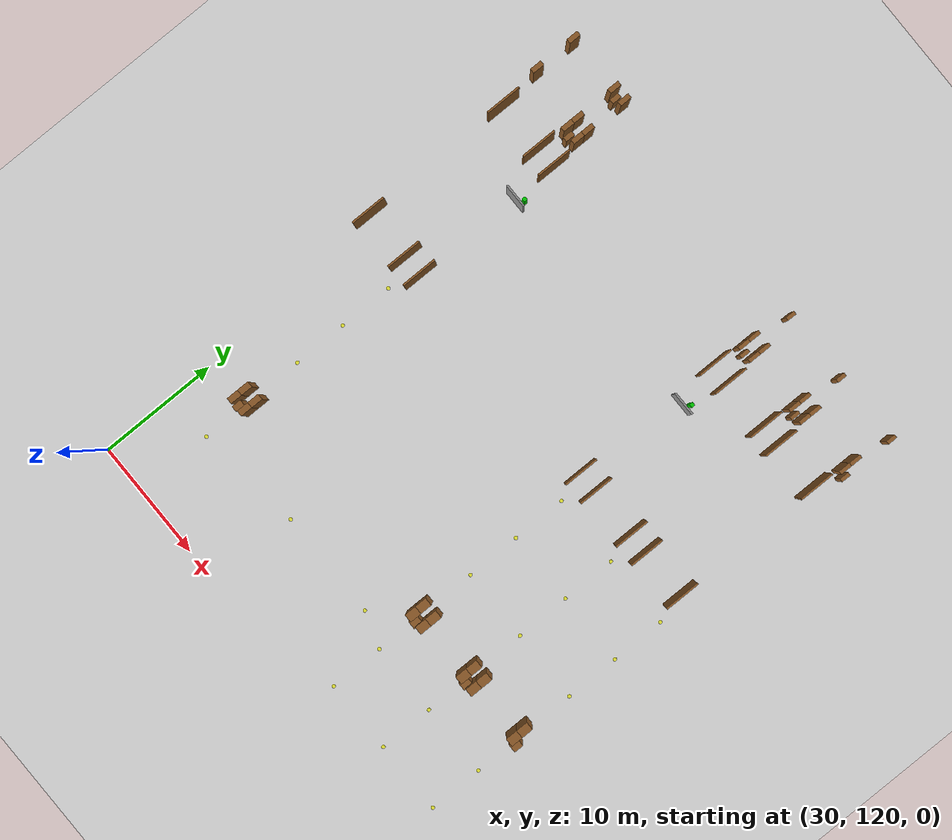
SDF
<sdf version="1.9">
 <world name="realistic_warehouse_150x200m">
  <model name="ground_plane">
   <static>true</static>
   <pose>68.5 102.0 0 0 0 0</pose>
   <link name="ground_link">
    <visual name="ground_visual">
     <geometry><box><size>127.0 194.0 0.01</size></box></geometry>
     <material><ambient>0.85 0.85 0.85 1.0</ambient><diffuse>0.85 0.85 0.85 1.0</diffuse></material>
    </visual>
    <collision name="ground_visual_collision">
     <geometry><box><size>127.0 194.0 0.01</size></box></geometry>
    </collision>
    <collision name="ground_collision">
     <geometry><plane><normal>0 0 1</normal><size>127.0 194.0</size></plane></geometry>
    </collision>
   </link>
  </model>
  <model name="dock_wall_Zone_A_C2_003">
   <static>true</static>
   <pose>35.0 156.2 1.25 0 0 0</pose>
   <link name="dock_wall_Zone_A_C2_003_link">
    <visual name="dock_wall_Zone_A_C2_003_vis">
     <geometry><box><size>2.0 0.15 2.5</size></box></geometry>
     <material><ambient>0.6 0.6 0.6 1.0</ambient><diffuse>0.6 0.6 0.6 1.0</diffuse></material>
    </visual>
    <collision name="dock_wall_Zone_A_C2_003_vis_collision">
     <geometry><box><size>2.0 0.15 2.5</size></box></geometry>
    </collision>
   </link>
  </model>
  <model name="charger_Zone_A_C2_004">
   <static>true</static>
   <pose>35.5 156.7 0.75 0 0 0</pose>
   <link name="charger_Zone_A_C2_004_link">
    <visual name="charger_Zone_A_C2_004_vis">
     <geometry><box><size>0.3 0.3 1.5</size></box></geometry>
     <material><ambient>0.0 0.8 0.0 1.0</ambient><diffuse>0.0 0.8 0.0 1.0</diffuse></material>
    </visual>
    <collision name="charger_Zone_A_C2_004_vis_collision">
     <geometry><box><size>0.3 0.3 1.5</size></box></geometry>
    </collision>
   </link>
  </model>
  <model name="aisle_R_Zone_A_A3_entry_139">
   <static>true</static>
   <pose>28.9 160.0 1.25 0 0 0</pose>
   <link name="aisle_R_Zone_A_A3_entry_139_link">
    <visual name="aisle_R_Zone_A_A3_entry_139_vis">
     <geometry><box><size>0.15 3.0 2.5</size></box></geometry>
     <material><ambient>0.55 0.35 0.15 1.0</ambient><diffuse>0.55 0.35 0.15 1.0</diffuse></material>
    </visual>
    <collision name="aisle_R_Zone_A_A3_entry_139_vis_collision">
     <geometry><box><size>0.15 3.0 2.5</size></box></geometry>
    </collision>
   </link>
  </model>
  <model name="rack_Zone_A_A3_S0_143">
   <static>true</static>
   <pose>28.6 163.5 1.25 0 0 0</pose>
   <link name="rack_Zone_A_A3_S0_143_link">
    <visual name="rack_Zone_A_A3_S0_143_vis">
     <geometry><box><size>0.4 1.0 2.5</size></box></geometry>
     <material><ambient>0.55 0.35 0.15 1.0</ambient><diffuse>0.55 0.35 0.15 1.0</diffuse></material>
    </visual>
    <collision name="rack_Zone_A_A3_S0_143_vis_collision">
     <geometry><box><size>0.4 1.0 2.5</size></box></geometry>
    </collision>
   </link>
  </model>
  <model name="rack_Zone_A_A3_S1_147">
   <static>true</static>
   <pose>28.6 167.0 1.25 0 0 0</pose>
   <link name="rack_Zone_A_A3_S1_147_link">
    <visual name="rack_Zone_A_A3_S1_147_vis">
     <geometry><box><size>0.4 1.0 2.5</size></box></geometry>
     <material><ambient>0.55 0.35 0.15 1.0</ambient><diffuse>0.55 0.35 0.15 1.0</diffuse></material>
    </visual>
    <collision name="rack_Zone_A_A3_S1_147_vis_collision">
     <geometry><box><size>0.4 1.0 2.5</size></box></geometry>
    </collision>
   </link>
  </model>
  <model name="aisle_L_Zone_A_A4_entry_182">
   <static>true</static>
   <pose>33.1 160.0 1.25 0 0 0</pose>
   <link name="aisle_L_Zone_A_A4_entry_182_link">
    <visual name="aisle_L_Zone_A_A4_entry_182_vis">
     <geometry><box><size>0.15 3.0 2.5</size></box></geometry>
     <material><ambient>0.55 0.35 0.15 1.0</ambient><diffuse>0.55 0.35 0.15 1.0</diffuse></material>
    </visual>
    <collision name="aisle_L_Zone_A_A4_entry_182_vis_collision">
     <geometry><box><size>0.15 3.0 2.5</size></box></geometry>
    </collision>
   </link>
  </model>
  <model name="aisle_R_Zone_A_A4_entry_183">
   <static>true</static>
   <pose>34.9 160.0 1.25 0 0 0</pose>
   <link name="aisle_R_Zone_A_A4_entry_183_link">
    <visual name="aisle_R_Zone_A_A4_entry_183_vis">
     <geometry><box><size>0.15 3.0 2.5</size></box></geometry>
     <material><ambient>0.55 0.35 0.15 1.0</ambient><diffuse>0.55 0.35 0.15 1.0</diffuse></material>
    </visual>
    <collision name="aisle_R_Zone_A_A4_entry_183_vis_collision">
     <geometry><box><size>0.15 3.0 2.5</size></box></geometry>
    </collision>
   </link>
  </model>
  <model name="rack_Zone_A_A4_S0_184">
   <static>true</static>
   <pose>33.4 162.5 1.25 0 0 0</pose>
   <link name="rack_Zone_A_A4_S0_184_link">
    <visual name="rack_Zone_A_A4_S0_184_vis">
     <geometry><box><size>0.4 1.0 2.5</size></box></geometry>
     <material><ambient>0.55 0.35 0.15 1.0</ambient><diffuse>0.55 0.35 0.15 1.0</diffuse></material>
    </visual>
    <collision name="rack_Zone_A_A4_S0_184_vis_collision">
     <geometry><box><size>0.4 1.0 2.5</size></box></geometry>
    </collision>
   </link>
  </model>
  <model name="rack_Zone_A_A4_S0_185">
   <static>true</static>
   <pose>33.4 163.5 1.25 0 0 0</pose>
   <link name="rack_Zone_A_A4_S0_185_link">
    <visual name="rack_Zone_A_A4_S0_185_vis">
     <geometry><box><size>0.4 1.0 2.5</size></box></geometry>
     <material><ambient>0.55 0.35 0.15 1.0</ambient><diffuse>0.55 0.35 0.15 1.0</diffuse></material>
    </visual>
    <collision name="rack_Zone_A_A4_S0_185_vis_collision">
     <geometry><box><size>0.4 1.0 2.5</size></box></geometry>
    </collision>
   </link>
  </model>
  <model name="rack_Zone_A_A4_S0_186">
   <static>true</static>
   <pose>34.6 162.5 1.25 0 0 0</pose>
   <link name="rack_Zone_A_A4_S0_186_link">
    <visual name="rack_Zone_A_A4_S0_186_vis">
     <geometry><box><size>0.4 1.0 2.5</size></box></geometry>
     <material><ambient>0.55 0.35 0.15 1.0</ambient><diffuse>0.55 0.35 0.15 1.0</diffuse></material>
    </visual>
    <collision name="rack_Zone_A_A4_S0_186_vis_collision">
     <geometry><box><size>0.4 1.0 2.5</size></box></geometry>
    </collision>
   </link>
  </model>
  <model name="rack_Zone_A_A4_S0_187">
   <static>true</static>
   <pose>34.6 163.5 1.25 0 0 0</pose>
   <link name="rack_Zone_A_A4_S0_187_link">
    <visual name="rack_Zone_A_A4_S0_187_vis">
     <geometry><box><size>0.4 1.0 2.5</size></box></geometry>
     <material><ambient>0.55 0.35 0.15 1.0</ambient><diffuse>0.55 0.35 0.15 1.0</diffuse></material>
    </visual>
    <collision name="rack_Zone_A_A4_S0_187_vis_collision">
     <geometry><box><size>0.4 1.0 2.5</size></box></geometry>
    </collision>
   </link>
  </model>
  <model name="rack_Zone_A_A4_S0_188">
   <static>true</static>
   <pose>34.0 162.2 0.9375 0 0 0</pose>
   <link name="rack_Zone_A_A4_S0_188_link">
    <visual name="rack_Zone_A_A4_S0_188_vis">
     <geometry><box><size>0.4 0.8 1.875</size></box></geometry>
     <material><ambient>0.55 0.35 0.15 1.0</ambient><diffuse>0.55 0.35 0.15 1.0</diffuse></material>
    </visual>
    <collision name="rack_Zone_A_A4_S0_188_vis_collision">
     <geometry><box><size>0.4 0.8 1.875</size></box></geometry>
    </collision>
   </link>
  </model>
  <model name="rack_Zone_A_A4_S1_189">
   <static>true</static>
   <pose>33.4 167.0 1.25 0 0 0</pose>
   <link name="rack_Zone_A_A4_S1_189_link">
    <visual name="rack_Zone_A_A4_S1_189_vis">
     <geometry><box><size>0.4 1.0 2.5</size></box></geometry>
     <material><ambient>0.55 0.35 0.15 1.0</ambient><diffuse>0.55 0.35 0.15 1.0</diffuse></material>
    </visual>
    <collision name="rack_Zone_A_A4_S1_189_vis_collision">
     <geometry><box><size>0.4 1.0 2.5</size></box></geometry>
    </collision>
   </link>
  </model>
  <model name="rack_Zone_A_A4_S1_191">
   <static>true</static>
   <pose>34.6 167.0 1.25 0 0 0</pose>
   <link name="rack_Zone_A_A4_S1_191_link">
    <visual name="rack_Zone_A_A4_S1_191_vis">
     <geometry><box><size>0.4 1.0 2.5</size></box></geometry>
     <material><ambient>0.55 0.35 0.15 1.0</ambient><diffuse>0.55 0.35 0.15 1.0</diffuse></material>
    </visual>
    <collision name="rack_Zone_A_A4_S1_191_vis_collision">
     <geometry><box><size>0.4 1.0 2.5</size></box></geometry>
    </collision>
   </link>
  </model>
  <model name="rack_Zone_A_A4_S1_193">
   <static>true</static>
   <pose>34.0 166.7 0.9375 0 0 0</pose>
   <link name="rack_Zone_A_A4_S1_193_link">
    <visual name="rack_Zone_A_A4_S1_193_vis">
     <geometry><box><size>0.4 0.8 1.875</size></box></geometry>
     <material><ambient>0.55 0.35 0.15 1.0</ambient><diffuse>0.55 0.35 0.15 1.0</diffuse></material>
    </visual>
    <collision name="rack_Zone_A_A4_S1_193_vis_collision">
     <geometry><box><size>0.4 0.8 1.875</size></box></geometry>
    </collision>
   </link>
  </model>
  <model name="dock_wall_Zone_B_C1_226">
   <static>true</static>
   <pose>55.0 156.2 1.0 0 0 0</pose>
   <link name="dock_wall_Zone_B_C1_226_link">
    <visual name="dock_wall_Zone_B_C1_226_vis">
     <geometry><box><size>2.0 0.15 2.0</size></box></geometry>
     <material><ambient>0.6 0.6 0.6 1.0</ambient><diffuse>0.6 0.6 0.6 1.0</diffuse></material>
    </visual>
    <collision name="dock_wall_Zone_B_C1_226_vis_collision">
     <geometry><box><size>2.0 0.15 2.0</size></box></geometry>
    </collision>
   </link>
  </model>
  <model name="charger_Zone_B_C1_227">
   <static>true</static>
   <pose>55.5 156.7 0.75 0 0 0</pose>
   <link name="charger_Zone_B_C1_227_link">
    <visual name="charger_Zone_B_C1_227_vis">
     <geometry><box><size>0.3 0.3 1.5</size></box></geometry>
     <material><ambient>0.0 0.8 0.0 1.0</ambient><diffuse>0.0 0.8 0.0 1.0</diffuse></material>
    </visual>
    <collision name="charger_Zone_B_C1_227_vis_collision">
     <geometry><box><size>0.3 0.3 1.5</size></box></geometry>
    </collision>
   </link>
  </model>
  <model name="aisle_L_Zone_B_A0_entry_231">
   <static>true</static>
   <pose>54.1 160.0 1.0 0 0 0</pose>
   <link name="aisle_L_Zone_B_A0_entry_231_link">
    <visual name="aisle_L_Zone_B_A0_entry_231_vis">
     <geometry><box><size>0.15 3.0 2.0</size></box></geometry>
     <material><ambient>0.55 0.35 0.15 1.0</ambient><diffuse>0.55 0.35 0.15 1.0</diffuse></material>
    </visual>
    <collision name="aisle_L_Zone_B_A0_entry_231_vis_collision">
     <geometry><box><size>0.15 3.0 2.0</size></box></geometry>
    </collision>
   </link>
  </model>
  <model name="aisle_R_Zone_B_A0_entry_232">
   <static>true</static>
   <pose>55.9 160.0 1.0 0 0 0</pose>
   <link name="aisle_R_Zone_B_A0_entry_232_link">
    <visual name="aisle_R_Zone_B_A0_entry_232_vis">
     <geometry><box><size>0.15 3.0 2.0</size></box></geometry>
     <material><ambient>0.55 0.35 0.15 1.0</ambient><diffuse>0.55 0.35 0.15 1.0</diffuse></material>
    </visual>
    <collision name="aisle_R_Zone_B_A0_entry_232_vis_collision">
     <geometry><box><size>0.15 3.0 2.0</size></box></geometry>
    </collision>
   </link>
  </model>
  <model name="rack_Zone_B_A0_S0_233">
   <static>true</static>
   <pose>54.4 162.5 1.0 0 0 0</pose>
   <link name="rack_Zone_B_A0_S0_233_link">
    <visual name="rack_Zone_B_A0_S0_233_vis">
     <geometry><box><size>0.3 1.0 2.0</size></box></geometry>
     <material><ambient>0.55 0.35 0.15 1.0</ambient><diffuse>0.55 0.35 0.15 1.0</diffuse></material>
    </visual>
    <collision name="rack_Zone_B_A0_S0_233_vis_collision">
     <geometry><box><size>0.3 1.0 2.0</size></box></geometry>
    </collision>
   </link>
  </model>
  <model name="rack_Zone_B_A0_S0_234">
   <static>true</static>
   <pose>54.4 163.5 1.0 0 0 0</pose>
   <link name="rack_Zone_B_A0_S0_234_link">
    <visual name="rack_Zone_B_A0_S0_234_vis">
     <geometry><box><size>0.3 1.0 2.0</size></box></geometry>
     <material><ambient>0.55 0.35 0.15 1.0</ambient><diffuse>0.55 0.35 0.15 1.0</diffuse></material>
    </visual>
    <collision name="rack_Zone_B_A0_S0_234_vis_collision">
     <geometry><box><size>0.3 1.0 2.0</size></box></geometry>
    </collision>
   </link>
  </model>
  <model name="rack_Zone_B_A0_S0_235">
   <static>true</static>
   <pose>55.6 162.5 1.0 0 0 0</pose>
   <link name="rack_Zone_B_A0_S0_235_link">
    <visual name="rack_Zone_B_A0_S0_235_vis">
     <geometry><box><size>0.3 1.0 2.0</size></box></geometry>
     <material><ambient>0.55 0.35 0.15 1.0</ambient><diffuse>0.55 0.35 0.15 1.0</diffuse></material>
    </visual>
    <collision name="rack_Zone_B_A0_S0_235_vis_collision">
     <geometry><box><size>0.3 1.0 2.0</size></box></geometry>
    </collision>
   </link>
  </model>
  <model name="rack_Zone_B_A0_S0_236">
   <static>true</static>
   <pose>55.6 163.5 1.0 0 0 0</pose>
   <link name="rack_Zone_B_A0_S0_236_link">
    <visual name="rack_Zone_B_A0_S0_236_vis">
     <geometry><box><size>0.3 1.0 2.0</size></box></geometry>
     <material><ambient>0.55 0.35 0.15 1.0</ambient><diffuse>0.55 0.35 0.15 1.0</diffuse></material>
    </visual>
    <collision name="rack_Zone_B_A0_S0_236_vis_collision">
     <geometry><box><size>0.3 1.0 2.0</size></box></geometry>
    </collision>
   </link>
  </model>
  <model name="rack_Zone_B_A0_S0_237">
   <static>true</static>
   <pose>55.0 162.2 0.75 0 0 0</pose>
   <link name="rack_Zone_B_A0_S0_237_link">
    <visual name="rack_Zone_B_A0_S0_237_vis">
     <geometry><box><size>0.3 0.8 1.5</size></box></geometry>
     <material><ambient>0.55 0.35 0.15 1.0</ambient><diffuse>0.55 0.35 0.15 1.0</diffuse></material>
    </visual>
    <collision name="rack_Zone_B_A0_S0_237_vis_collision">
     <geometry><box><size>0.3 0.8 1.5</size></box></geometry>
    </collision>
   </link>
  </model>
  <model name="rack_Zone_B_A0_S1_242">
   <static>true</static>
   <pose>55.0 166.7 0.75 0 0 0</pose>
   <link name="rack_Zone_B_A0_S1_242_link">
    <visual name="rack_Zone_B_A0_S1_242_vis">
     <geometry><box><size>0.3 0.8 1.5</size></box></geometry>
     <material><ambient>0.55 0.35 0.15 1.0</ambient><diffuse>0.55 0.35 0.15 1.0</diffuse></material>
    </visual>
    <collision name="rack_Zone_B_A0_S1_242_vis_collision">
     <geometry><box><size>0.3 0.8 1.5</size></box></geometry>
    </collision>
   </link>
  </model>
  <model name="aisle_L_Zone_B_A1_entry_275">
   <static>true</static>
   <pose>60.1 160.0 1.0 0 0 0</pose>
   <link name="aisle_L_Zone_B_A1_entry_275_link">
    <visual name="aisle_L_Zone_B_A1_entry_275_vis">
     <geometry><box><size>0.15 3.0 2.0</size></box></geometry>
     <material><ambient>0.55 0.35 0.15 1.0</ambient><diffuse>0.55 0.35 0.15 1.0</diffuse></material>
    </visual>
    <collision name="aisle_L_Zone_B_A1_entry_275_vis_collision">
     <geometry><box><size>0.15 3.0 2.0</size></box></geometry>
    </collision>
   </link>
  </model>
  <model name="aisle_R_Zone_B_A1_entry_276">
   <static>true</static>
   <pose>61.9 160.0 1.0 0 0 0</pose>
   <link name="aisle_R_Zone_B_A1_entry_276_link">
    <visual name="aisle_R_Zone_B_A1_entry_276_vis">
     <geometry><box><size>0.15 3.0 2.0</size></box></geometry>
     <material><ambient>0.55 0.35 0.15 1.0</ambient><diffuse>0.55 0.35 0.15 1.0</diffuse></material>
    </visual>
    <collision name="aisle_R_Zone_B_A1_entry_276_vis_collision">
     <geometry><box><size>0.15 3.0 2.0</size></box></geometry>
    </collision>
   </link>
  </model>
  <model name="rack_Zone_B_A1_S0_277">
   <static>true</static>
   <pose>60.4 162.5 1.0 0 0 0</pose>
   <link name="rack_Zone_B_A1_S0_277_link">
    <visual name="rack_Zone_B_A1_S0_277_vis">
     <geometry><box><size>0.3 1.0 2.0</size></box></geometry>
     <material><ambient>0.55 0.35 0.15 1.0</ambient><diffuse>0.55 0.35 0.15 1.0</diffuse></material>
    </visual>
    <collision name="rack_Zone_B_A1_S0_277_vis_collision">
     <geometry><box><size>0.3 1.0 2.0</size></box></geometry>
    </collision>
   </link>
  </model>
  <model name="rack_Zone_B_A1_S0_278">
   <static>true</static>
   <pose>60.4 163.5 1.0 0 0 0</pose>
   <link name="rack_Zone_B_A1_S0_278_link">
    <visual name="rack_Zone_B_A1_S0_278_vis">
     <geometry><box><size>0.3 1.0 2.0</size></box></geometry>
     <material><ambient>0.55 0.35 0.15 1.0</ambient><diffuse>0.55 0.35 0.15 1.0</diffuse></material>
    </visual>
    <collision name="rack_Zone_B_A1_S0_278_vis_collision">
     <geometry><box><size>0.3 1.0 2.0</size></box></geometry>
    </collision>
   </link>
  </model>
  <model name="rack_Zone_B_A1_S0_279">
   <static>true</static>
   <pose>61.6 162.5 1.0 0 0 0</pose>
   <link name="rack_Zone_B_A1_S0_279_link">
    <visual name="rack_Zone_B_A1_S0_279_vis">
     <geometry><box><size>0.3 1.0 2.0</size></box></geometry>
     <material><ambient>0.55 0.35 0.15 1.0</ambient><diffuse>0.55 0.35 0.15 1.0</diffuse></material>
    </visual>
    <collision name="rack_Zone_B_A1_S0_279_vis_collision">
     <geometry><box><size>0.3 1.0 2.0</size></box></geometry>
    </collision>
   </link>
  </model>
  <model name="rack_Zone_B_A1_S0_280">
   <static>true</static>
   <pose>61.6 163.5 1.0 0 0 0</pose>
   <link name="rack_Zone_B_A1_S0_280_link">
    <visual name="rack_Zone_B_A1_S0_280_vis">
     <geometry><box><size>0.3 1.0 2.0</size></box></geometry>
     <material><ambient>0.55 0.35 0.15 1.0</ambient><diffuse>0.55 0.35 0.15 1.0</diffuse></material>
    </visual>
    <collision name="rack_Zone_B_A1_S0_280_vis_collision">
     <geometry><box><size>0.3 1.0 2.0</size></box></geometry>
    </collision>
   </link>
  </model>
  <model name="rack_Zone_B_A1_S0_281">
   <static>true</static>
   <pose>61.0 162.2 0.75 0 0 0</pose>
   <link name="rack_Zone_B_A1_S0_281_link">
    <visual name="rack_Zone_B_A1_S0_281_vis">
     <geometry><box><size>0.3 0.8 1.5</size></box></geometry>
     <material><ambient>0.55 0.35 0.15 1.0</ambient><diffuse>0.55 0.35 0.15 1.0</diffuse></material>
    </visual>
    <collision name="rack_Zone_B_A1_S0_281_vis_collision">
     <geometry><box><size>0.3 0.8 1.5</size></box></geometry>
    </collision>
   </link>
  </model>
  <model name="rack_Zone_B_A1_S1_286">
   <static>true</static>
   <pose>61.0 166.7 0.75 0 0 0</pose>
   <link name="rack_Zone_B_A1_S1_286_link">
    <visual name="rack_Zone_B_A1_S1_286_vis">
     <geometry><box><size>0.3 0.8 1.5</size></box></geometry>
     <material><ambient>0.55 0.35 0.15 1.0</ambient><diffuse>0.55 0.35 0.15 1.0</diffuse></material>
    </visual>
    <collision name="rack_Zone_B_A1_S1_286_vis_collision">
     <geometry><box><size>0.3 0.8 1.5</size></box></geometry>
    </collision>
   </link>
  </model>
  <model name="aisle_L_Zone_B_A2_entry_319">
   <static>true</static>
   <pose>66.1 160.0 1.0 0 0 0</pose>
   <link name="aisle_L_Zone_B_A2_entry_319_link">
    <visual name="aisle_L_Zone_B_A2_entry_319_vis">
     <geometry><box><size>0.15 3.0 2.0</size></box></geometry>
     <material><ambient>0.55 0.35 0.15 1.0</ambient><diffuse>0.55 0.35 0.15 1.0</diffuse></material>
    </visual>
    <collision name="aisle_L_Zone_B_A2_entry_319_vis_collision">
     <geometry><box><size>0.15 3.0 2.0</size></box></geometry>
    </collision>
   </link>
  </model>
  <model name="rack_Zone_B_A2_S0_321">
   <static>true</static>
   <pose>66.4 162.5 1.0 0 0 0</pose>
   <link name="rack_Zone_B_A2_S0_321_link">
    <visual name="rack_Zone_B_A2_S0_321_vis">
     <geometry><box><size>0.3 1.0 2.0</size></box></geometry>
     <material><ambient>0.55 0.35 0.15 1.0</ambient><diffuse>0.55 0.35 0.15 1.0</diffuse></material>
    </visual>
    <collision name="rack_Zone_B_A2_S0_321_vis_collision">
     <geometry><box><size>0.3 1.0 2.0</size></box></geometry>
    </collision>
   </link>
  </model>
  <model name="rack_Zone_B_A2_S0_322">
   <static>true</static>
   <pose>66.4 163.5 1.0 0 0 0</pose>
   <link name="rack_Zone_B_A2_S0_322_link">
    <visual name="rack_Zone_B_A2_S0_322_vis">
     <geometry><box><size>0.3 1.0 2.0</size></box></geometry>
     <material><ambient>0.55 0.35 0.15 1.0</ambient><diffuse>0.55 0.35 0.15 1.0</diffuse></material>
    </visual>
    <collision name="rack_Zone_B_A2_S0_322_vis_collision">
     <geometry><box><size>0.3 1.0 2.0</size></box></geometry>
    </collision>
   </link>
  </model>
  <model name="rack_Zone_B_A2_S0_325">
   <static>true</static>
   <pose>67.0 162.2 0.75 0 0 0</pose>
   <link name="rack_Zone_B_A2_S0_325_link">
    <visual name="rack_Zone_B_A2_S0_325_vis">
     <geometry><box><size>0.3 0.8 1.5</size></box></geometry>
     <material><ambient>0.55 0.35 0.15 1.0</ambient><diffuse>0.55 0.35 0.15 1.0</diffuse></material>
    </visual>
    <collision name="rack_Zone_B_A2_S0_325_vis_collision">
     <geometry><box><size>0.3 0.8 1.5</size></box></geometry>
    </collision>
   </link>
  </model>
  <model name="rack_Zone_B_A2_S1_330">
   <static>true</static>
   <pose>67.0 166.7 0.75 0 0 0</pose>
   <link name="rack_Zone_B_A2_S1_330_link">
    <visual name="rack_Zone_B_A2_S1_330_vis">
     <geometry><box><size>0.3 0.8 1.5</size></box></geometry>
     <material><ambient>0.55 0.35 0.15 1.0</ambient><diffuse>0.55 0.35 0.15 1.0</diffuse></material>
    </visual>
    <collision name="rack_Zone_B_A2_S1_330_vis_collision">
     <geometry><box><size>0.3 0.8 1.5</size></box></geometry>
    </collision>
   </link>
  </model>
  <model name="aisle_R_Zone_D_A3_exit_760">
   <static>true</static>
   <pose>28.9 147.0 1.25 0 0 0</pose>
   <link name="aisle_R_Zone_D_A3_exit_760_link">
    <visual name="aisle_R_Zone_D_A3_exit_760_vis">
     <geometry><box><size>0.15 3.0 2.5</size></box></geometry>
     <material><ambient>0.55 0.35 0.15 1.0</ambient><diffuse>0.55 0.35 0.15 1.0</diffuse></material>
    </visual>
    <collision name="aisle_R_Zone_D_A3_exit_760_vis_collision">
     <geometry><box><size>0.15 3.0 2.5</size></box></geometry>
    </collision>
   </link>
  </model>
  <model name="cross_Zone_D_A4_S3_770">
   <static>true</static>
   <pose>34.0 126.5 0.01 0 0 0</pose>
   <link name="cross_Zone_D_A4_S3_770_link">
    <visual name="cross_Zone_D_A4_S3_770_vis">
     <geometry><cylinder><radius>0.15</radius><length>0.02</length></cylinder></geometry>
     <material><ambient>0.9 0.9 0.2 1.0</ambient><diffuse>0.9 0.9 0.2 1.0</diffuse></material>
    </visual>
    <collision name="cross_Zone_D_A4_S3_770_vis_collision">
     <geometry><cylinder><radius>0.15</radius><length>0.02</length></cylinder></geometry>
    </collision>
   </link>
  </model>
  <model name="rack_Zone_D_A4_S4_771">
   <static>true</static>
   <pose>33.4 130.5 1.25 0 0 0</pose>
   <link name="rack_Zone_D_A4_S4_771_link">
    <visual name="rack_Zone_D_A4_S4_771_vis">
     <geometry><box><size>0.5 1.0 2.5</size></box></geometry>
     <material><ambient>0.55 0.35 0.15 1.0</ambient><diffuse>0.55 0.35 0.15 1.0</diffuse></material>
    </visual>
    <collision name="rack_Zone_D_A4_S4_771_vis_collision">
     <geometry><box><size>0.5 1.0 2.5</size></box></geometry>
    </collision>
   </link>
  </model>
  <model name="rack_Zone_D_A4_S4_772">
   <static>true</static>
   <pose>33.4 131.5 1.25 0 0 0</pose>
   <link name="rack_Zone_D_A4_S4_772_link">
    <visual name="rack_Zone_D_A4_S4_772_vis">
     <geometry><box><size>0.5 1.0 2.5</size></box></geometry>
     <material><ambient>0.55 0.35 0.15 1.0</ambient><diffuse>0.55 0.35 0.15 1.0</diffuse></material>
    </visual>
    <collision name="rack_Zone_D_A4_S4_772_vis_collision">
     <geometry><box><size>0.5 1.0 2.5</size></box></geometry>
    </collision>
   </link>
  </model>
  <model name="rack_Zone_D_A4_S4_773">
   <static>true</static>
   <pose>34.6 130.5 1.25 0 0 0</pose>
   <link name="rack_Zone_D_A4_S4_773_link">
    <visual name="rack_Zone_D_A4_S4_773_vis">
     <geometry><box><size>0.5 1.0 2.5</size></box></geometry>
     <material><ambient>0.55 0.35 0.15 1.0</ambient><diffuse>0.55 0.35 0.15 1.0</diffuse></material>
    </visual>
    <collision name="rack_Zone_D_A4_S4_773_vis_collision">
     <geometry><box><size>0.5 1.0 2.5</size></box></geometry>
    </collision>
   </link>
  </model>
  <model name="rack_Zone_D_A4_S4_774">
   <static>true</static>
   <pose>34.6 131.5 1.25 0 0 0</pose>
   <link name="rack_Zone_D_A4_S4_774_link">
    <visual name="rack_Zone_D_A4_S4_774_vis">
     <geometry><box><size>0.5 1.0 2.5</size></box></geometry>
     <material><ambient>0.55 0.35 0.15 1.0</ambient><diffuse>0.55 0.35 0.15 1.0</diffuse></material>
    </visual>
    <collision name="rack_Zone_D_A4_S4_774_vis_collision">
     <geometry><box><size>0.5 1.0 2.5</size></box></geometry>
    </collision>
   </link>
  </model>
  <model name="rack_Zone_D_A4_S4_775">
   <static>true</static>
   <pose>34.0 130.2 0.9375 0 0 0</pose>
   <link name="rack_Zone_D_A4_S4_775_link">
    <visual name="rack_Zone_D_A4_S4_775_vis">
     <geometry><box><size>0.5 0.8 1.875</size></box></geometry>
     <material><ambient>0.55 0.35 0.15 1.0</ambient><diffuse>0.55 0.35 0.15 1.0</diffuse></material>
    </visual>
    <collision name="rack_Zone_D_A4_S4_775_vis_collision">
     <geometry><box><size>0.5 0.8 1.875</size></box></geometry>
    </collision>
   </link>
  </model>
  <model name="cross_Zone_D_A4_S5_776">
   <static>true</static>
   <pose>34.0 135.5 0.01 0 0 0</pose>
   <link name="cross_Zone_D_A4_S5_776_link">
    <visual name="cross_Zone_D_A4_S5_776_vis">
     <geometry><cylinder><radius>0.15</radius><length>0.02</length></cylinder></geometry>
     <material><ambient>0.9 0.9 0.2 1.0</ambient><diffuse>0.9 0.9 0.2 1.0</diffuse></material>
    </visual>
    <collision name="cross_Zone_D_A4_S5_776_vis_collision">
     <geometry><cylinder><radius>0.15</radius><length>0.02</length></cylinder></geometry>
    </collision>
   </link>
  </model>
  <model name="gap_Zone_D_A4_S6_777">
   <static>true</static>
   <pose>34.0 140.0 0.01 0 0 0</pose>
   <link name="gap_Zone_D_A4_S6_777_link">
    <visual name="gap_Zone_D_A4_S6_777_vis">
     <geometry><cylinder><radius>0.15</radius><length>0.02</length></cylinder></geometry>
     <material><ambient>0.9 0.9 0.2 1.0</ambient><diffuse>0.9 0.9 0.2 1.0</diffuse></material>
    </visual>
    <collision name="gap_Zone_D_A4_S6_777_vis_collision">
     <geometry><cylinder><radius>0.15</radius><length>0.02</length></cylinder></geometry>
    </collision>
   </link>
  </model>
  <model name="cross_Zone_D_A4_S7_778">
   <static>true</static>
   <pose>34.0 144.5 0.01 0 0 0</pose>
   <link name="cross_Zone_D_A4_S7_778_link">
    <visual name="cross_Zone_D_A4_S7_778_vis">
     <geometry><cylinder><radius>0.15</radius><length>0.02</length></cylinder></geometry>
     <material><ambient>0.9 0.9 0.2 1.0</ambient><diffuse>0.9 0.9 0.2 1.0</diffuse></material>
    </visual>
    <collision name="cross_Zone_D_A4_S7_778_vis_collision">
     <geometry><cylinder><radius>0.15</radius><length>0.02</length></cylinder></geometry>
    </collision>
   </link>
  </model>
  <model name="aisle_L_Zone_D_A4_exit_779">
   <static>true</static>
   <pose>33.1 147.0 1.25 0 0 0</pose>
   <link name="aisle_L_Zone_D_A4_exit_779_link">
    <visual name="aisle_L_Zone_D_A4_exit_779_vis">
     <geometry><box><size>0.15 3.0 2.5</size></box></geometry>
     <material><ambient>0.55 0.35 0.15 1.0</ambient><diffuse>0.55 0.35 0.15 1.0</diffuse></material>
    </visual>
    <collision name="aisle_L_Zone_D_A4_exit_779_vis_collision">
     <geometry><box><size>0.15 3.0 2.5</size></box></geometry>
    </collision>
   </link>
  </model>
  <model name="aisle_R_Zone_D_A4_exit_780">
   <static>true</static>
   <pose>34.9 147.0 1.25 0 0 0</pose>
   <link name="aisle_R_Zone_D_A4_exit_780_link">
    <visual name="aisle_R_Zone_D_A4_exit_780_vis">
     <geometry><box><size>0.15 3.0 2.5</size></box></geometry>
     <material><ambient>0.55 0.35 0.15 1.0</ambient><diffuse>0.55 0.35 0.15 1.0</diffuse></material>
    </visual>
    <collision name="aisle_R_Zone_D_A4_exit_780_vis_collision">
     <geometry><box><size>0.15 3.0 2.5</size></box></geometry>
    </collision>
   </link>
  </model>
  <model name="gap_Zone_E_A0_S2_794">
   <static>true</static>
   <pose>55.0 122.0 0.01 0 0 0</pose>
   <link name="gap_Zone_E_A0_S2_794_link">
    <visual name="gap_Zone_E_A0_S2_794_vis">
     <geometry><cylinder><radius>0.15</radius><length>0.02</length></cylinder></geometry>
     <material><ambient>0.9 0.9 0.2 1.0</ambient><diffuse>0.9 0.9 0.2 1.0</diffuse></material>
    </visual>
    <collision name="gap_Zone_E_A0_S2_794_vis_collision">
     <geometry><cylinder><radius>0.15</radius><length>0.02</length></cylinder></geometry>
    </collision>
   </link>
  </model>
  <model name="cross_Zone_E_A0_S3_795">
   <static>true</static>
   <pose>55.0 126.5 0.01 0 0 0</pose>
   <link name="cross_Zone_E_A0_S3_795_link">
    <visual name="cross_Zone_E_A0_S3_795_vis">
     <geometry><cylinder><radius>0.15</radius><length>0.02</length></cylinder></geometry>
     <material><ambient>0.9 0.9 0.2 1.0</ambient><diffuse>0.9 0.9 0.2 1.0</diffuse></material>
    </visual>
    <collision name="cross_Zone_E_A0_S3_795_vis_collision">
     <geometry><cylinder><radius>0.15</radius><length>0.02</length></cylinder></geometry>
    </collision>
   </link>
  </model>
  <model name="rack_Zone_E_A0_S4_796">
   <static>true</static>
   <pose>54.4 130.5 1.0 0 0 0</pose>
   <link name="rack_Zone_E_A0_S4_796_link">
    <visual name="rack_Zone_E_A0_S4_796_vis">
     <geometry><box><size>0.7 1.0 2.0</size></box></geometry>
     <material><ambient>0.55 0.35 0.15 1.0</ambient><diffuse>0.55 0.35 0.15 1.0</diffuse></material>
    </visual>
    <collision name="rack_Zone_E_A0_S4_796_vis_collision">
     <geometry><box><size>0.7 1.0 2.0</size></box></geometry>
    </collision>
   </link>
  </model>
  <model name="rack_Zone_E_A0_S4_797">
   <static>true</static>
   <pose>54.4 131.5 1.0 0 0 0</pose>
   <link name="rack_Zone_E_A0_S4_797_link">
    <visual name="rack_Zone_E_A0_S4_797_vis">
     <geometry><box><size>0.7 1.0 2.0</size></box></geometry>
     <material><ambient>0.55 0.35 0.15 1.0</ambient><diffuse>0.55 0.35 0.15 1.0</diffuse></material>
    </visual>
    <collision name="rack_Zone_E_A0_S4_797_vis_collision">
     <geometry><box><size>0.7 1.0 2.0</size></box></geometry>
    </collision>
   </link>
  </model>
  <model name="rack_Zone_E_A0_S4_798">
   <static>true</static>
   <pose>55.6 130.5 1.0 0 0 0</pose>
   <link name="rack_Zone_E_A0_S4_798_link">
    <visual name="rack_Zone_E_A0_S4_798_vis">
     <geometry><box><size>0.7 1.0 2.0</size></box></geometry>
     <material><ambient>0.55 0.35 0.15 1.0</ambient><diffuse>0.55 0.35 0.15 1.0</diffuse></material>
    </visual>
    <collision name="rack_Zone_E_A0_S4_798_vis_collision">
     <geometry><box><size>0.7 1.0 2.0</size></box></geometry>
    </collision>
   </link>
  </model>
  <model name="rack_Zone_E_A0_S4_799">
   <static>true</static>
   <pose>55.6 131.5 1.0 0 0 0</pose>
   <link name="rack_Zone_E_A0_S4_799_link">
    <visual name="rack_Zone_E_A0_S4_799_vis">
     <geometry><box><size>0.7 1.0 2.0</size></box></geometry>
     <material><ambient>0.55 0.35 0.15 1.0</ambient><diffuse>0.55 0.35 0.15 1.0</diffuse></material>
    </visual>
    <collision name="rack_Zone_E_A0_S4_799_vis_collision">
     <geometry><box><size>0.7 1.0 2.0</size></box></geometry>
    </collision>
   </link>
  </model>
  <model name="rack_Zone_E_A0_S4_800">
   <static>true</static>
   <pose>55.0 130.2 0.75 0 0 0</pose>
   <link name="rack_Zone_E_A0_S4_800_link">
    <visual name="rack_Zone_E_A0_S4_800_vis">
     <geometry><box><size>0.7 0.8 1.5</size></box></geometry>
     <material><ambient>0.55 0.35 0.15 1.0</ambient><diffuse>0.55 0.35 0.15 1.0</diffuse></material>
    </visual>
    <collision name="rack_Zone_E_A0_S4_800_vis_collision">
     <geometry><box><size>0.7 0.8 1.5</size></box></geometry>
    </collision>
   </link>
  </model>
  <model name="cross_Zone_E_A0_S5_801">
   <static>true</static>
   <pose>55.0 135.5 0.01 0 0 0</pose>
   <link name="cross_Zone_E_A0_S5_801_link">
    <visual name="cross_Zone_E_A0_S5_801_vis">
     <geometry><cylinder><radius>0.15</radius><length>0.02</length></cylinder></geometry>
     <material><ambient>0.9 0.9 0.2 1.0</ambient><diffuse>0.9 0.9 0.2 1.0</diffuse></material>
    </visual>
    <collision name="cross_Zone_E_A0_S5_801_vis_collision">
     <geometry><cylinder><radius>0.15</radius><length>0.02</length></cylinder></geometry>
    </collision>
   </link>
  </model>
  <model name="gap_Zone_E_A0_S6_802">
   <static>true</static>
   <pose>55.0 140.0 0.01 0 0 0</pose>
   <link name="gap_Zone_E_A0_S6_802_link">
    <visual name="gap_Zone_E_A0_S6_802_vis">
     <geometry><cylinder><radius>0.15</radius><length>0.02</length></cylinder></geometry>
     <material><ambient>0.9 0.9 0.2 1.0</ambient><diffuse>0.9 0.9 0.2 1.0</diffuse></material>
    </visual>
    <collision name="gap_Zone_E_A0_S6_802_vis_collision">
     <geometry><cylinder><radius>0.15</radius><length>0.02</length></cylinder></geometry>
    </collision>
   </link>
  </model>
  <model name="cross_Zone_E_A0_S7_803">
   <static>true</static>
   <pose>55.0 144.5 0.01 0 0 0</pose>
   <link name="cross_Zone_E_A0_S7_803_link">
    <visual name="cross_Zone_E_A0_S7_803_vis">
     <geometry><cylinder><radius>0.15</radius><length>0.02</length></cylinder></geometry>
     <material><ambient>0.9 0.9 0.2 1.0</ambient><diffuse>0.9 0.9 0.2 1.0</diffuse></material>
    </visual>
    <collision name="cross_Zone_E_A0_S7_803_vis_collision">
     <geometry><cylinder><radius>0.15</radius><length>0.02</length></cylinder></geometry>
    </collision>
   </link>
  </model>
  <model name="aisle_L_Zone_E_A0_exit_804">
   <static>true</static>
   <pose>54.1 147.0 1.0 0 0 0</pose>
   <link name="aisle_L_Zone_E_A0_exit_804_link">
    <visual name="aisle_L_Zone_E_A0_exit_804_vis">
     <geometry><box><size>0.15 3.0 2.0</size></box></geometry>
     <material><ambient>0.55 0.35 0.15 1.0</ambient><diffuse>0.55 0.35 0.15 1.0</diffuse></material>
    </visual>
    <collision name="aisle_L_Zone_E_A0_exit_804_vis_collision">
     <geometry><box><size>0.15 3.0 2.0</size></box></geometry>
    </collision>
   </link>
  </model>
  <model name="aisle_R_Zone_E_A0_exit_805">
   <static>true</static>
   <pose>55.9 147.0 1.0 0 0 0</pose>
   <link name="aisle_R_Zone_E_A0_exit_805_link">
    <visual name="aisle_R_Zone_E_A0_exit_805_vis">
     <geometry><box><size>0.15 3.0 2.0</size></box></geometry>
     <material><ambient>0.55 0.35 0.15 1.0</ambient><diffuse>0.55 0.35 0.15 1.0</diffuse></material>
    </visual>
    <collision name="aisle_R_Zone_E_A0_exit_805_vis_collision">
     <geometry><box><size>0.15 3.0 2.0</size></box></geometry>
    </collision>
   </link>
  </model>
  <model name="gap_Zone_E_A1_S2_814">
   <static>true</static>
   <pose>61.0 122.0 0.01 0 0 0</pose>
   <link name="gap_Zone_E_A1_S2_814_link">
    <visual name="gap_Zone_E_A1_S2_814_vis">
     <geometry><cylinder><radius>0.15</radius><length>0.02</length></cylinder></geometry>
     <material><ambient>0.9 0.9 0.2 1.0</ambient><diffuse>0.9 0.9 0.2 1.0</diffuse></material>
    </visual>
    <collision name="gap_Zone_E_A1_S2_814_vis_collision">
     <geometry><cylinder><radius>0.15</radius><length>0.02</length></cylinder></geometry>
    </collision>
   </link>
  </model>
  <model name="cross_Zone_E_A1_S3_815">
   <static>true</static>
   <pose>61.0 126.5 0.01 0 0 0</pose>
   <link name="cross_Zone_E_A1_S3_815_link">
    <visual name="cross_Zone_E_A1_S3_815_vis">
     <geometry><cylinder><radius>0.15</radius><length>0.02</length></cylinder></geometry>
     <material><ambient>0.9 0.9 0.2 1.0</ambient><diffuse>0.9 0.9 0.2 1.0</diffuse></material>
    </visual>
    <collision name="cross_Zone_E_A1_S3_815_vis_collision">
     <geometry><cylinder><radius>0.15</radius><length>0.02</length></cylinder></geometry>
    </collision>
   </link>
  </model>
  <model name="rack_Zone_E_A1_S4_816">
   <static>true</static>
   <pose>60.4 130.5 1.0 0 0 0</pose>
   <link name="rack_Zone_E_A1_S4_816_link">
    <visual name="rack_Zone_E_A1_S4_816_vis">
     <geometry><box><size>0.7 1.0 2.0</size></box></geometry>
     <material><ambient>0.55 0.35 0.15 1.0</ambient><diffuse>0.55 0.35 0.15 1.0</diffuse></material>
    </visual>
    <collision name="rack_Zone_E_A1_S4_816_vis_collision">
     <geometry><box><size>0.7 1.0 2.0</size></box></geometry>
    </collision>
   </link>
  </model>
  <model name="rack_Zone_E_A1_S4_817">
   <static>true</static>
   <pose>60.4 131.5 1.0 0 0 0</pose>
   <link name="rack_Zone_E_A1_S4_817_link">
    <visual name="rack_Zone_E_A1_S4_817_vis">
     <geometry><box><size>0.7 1.0 2.0</size></box></geometry>
     <material><ambient>0.55 0.35 0.15 1.0</ambient><diffuse>0.55 0.35 0.15 1.0</diffuse></material>
    </visual>
    <collision name="rack_Zone_E_A1_S4_817_vis_collision">
     <geometry><box><size>0.7 1.0 2.0</size></box></geometry>
    </collision>
   </link>
  </model>
  <model name="rack_Zone_E_A1_S4_818">
   <static>true</static>
   <pose>61.6 130.5 1.0 0 0 0</pose>
   <link name="rack_Zone_E_A1_S4_818_link">
    <visual name="rack_Zone_E_A1_S4_818_vis">
     <geometry><box><size>0.7 1.0 2.0</size></box></geometry>
     <material><ambient>0.55 0.35 0.15 1.0</ambient><diffuse>0.55 0.35 0.15 1.0</diffuse></material>
    </visual>
    <collision name="rack_Zone_E_A1_S4_818_vis_collision">
     <geometry><box><size>0.7 1.0 2.0</size></box></geometry>
    </collision>
   </link>
  </model>
  <model name="rack_Zone_E_A1_S4_819">
   <static>true</static>
   <pose>61.6 131.5 1.0 0 0 0</pose>
   <link name="rack_Zone_E_A1_S4_819_link">
    <visual name="rack_Zone_E_A1_S4_819_vis">
     <geometry><box><size>0.7 1.0 2.0</size></box></geometry>
     <material><ambient>0.55 0.35 0.15 1.0</ambient><diffuse>0.55 0.35 0.15 1.0</diffuse></material>
    </visual>
    <collision name="rack_Zone_E_A1_S4_819_vis_collision">
     <geometry><box><size>0.7 1.0 2.0</size></box></geometry>
    </collision>
   </link>
  </model>
  <model name="rack_Zone_E_A1_S4_820">
   <static>true</static>
   <pose>61.0 130.2 0.75 0 0 0</pose>
   <link name="rack_Zone_E_A1_S4_820_link">
    <visual name="rack_Zone_E_A1_S4_820_vis">
     <geometry><box><size>0.7 0.8 1.5</size></box></geometry>
     <material><ambient>0.55 0.35 0.15 1.0</ambient><diffuse>0.55 0.35 0.15 1.0</diffuse></material>
    </visual>
    <collision name="rack_Zone_E_A1_S4_820_vis_collision">
     <geometry><box><size>0.7 0.8 1.5</size></box></geometry>
    </collision>
   </link>
  </model>
  <model name="cross_Zone_E_A1_S5_821">
   <static>true</static>
   <pose>61.0 135.5 0.01 0 0 0</pose>
   <link name="cross_Zone_E_A1_S5_821_link">
    <visual name="cross_Zone_E_A1_S5_821_vis">
     <geometry><cylinder><radius>0.15</radius><length>0.02</length></cylinder></geometry>
     <material><ambient>0.9 0.9 0.2 1.0</ambient><diffuse>0.9 0.9 0.2 1.0</diffuse></material>
    </visual>
    <collision name="cross_Zone_E_A1_S5_821_vis_collision">
     <geometry><cylinder><radius>0.15</radius><length>0.02</length></cylinder></geometry>
    </collision>
   </link>
  </model>
  <model name="gap_Zone_E_A1_S6_822">
   <static>true</static>
   <pose>61.0 140.0 0.01 0 0 0</pose>
   <link name="gap_Zone_E_A1_S6_822_link">
    <visual name="gap_Zone_E_A1_S6_822_vis">
     <geometry><cylinder><radius>0.15</radius><length>0.02</length></cylinder></geometry>
     <material><ambient>0.9 0.9 0.2 1.0</ambient><diffuse>0.9 0.9 0.2 1.0</diffuse></material>
    </visual>
    <collision name="gap_Zone_E_A1_S6_822_vis_collision">
     <geometry><cylinder><radius>0.15</radius><length>0.02</length></cylinder></geometry>
    </collision>
   </link>
  </model>
  <model name="cross_Zone_E_A1_S7_823">
   <static>true</static>
   <pose>61.0 144.5 0.01 0 0 0</pose>
   <link name="cross_Zone_E_A1_S7_823_link">
    <visual name="cross_Zone_E_A1_S7_823_vis">
     <geometry><cylinder><radius>0.15</radius><length>0.02</length></cylinder></geometry>
     <material><ambient>0.9 0.9 0.2 1.0</ambient><diffuse>0.9 0.9 0.2 1.0</diffuse></material>
    </visual>
    <collision name="cross_Zone_E_A1_S7_823_vis_collision">
     <geometry><cylinder><radius>0.15</radius><length>0.02</length></cylinder></geometry>
    </collision>
   </link>
  </model>
  <model name="aisle_L_Zone_E_A1_exit_824">
   <static>true</static>
   <pose>60.1 147.0 1.0 0 0 0</pose>
   <link name="aisle_L_Zone_E_A1_exit_824_link">
    <visual name="aisle_L_Zone_E_A1_exit_824_vis">
     <geometry><box><size>0.15 3.0 2.0</size></box></geometry>
     <material><ambient>0.55 0.35 0.15 1.0</ambient><diffuse>0.55 0.35 0.15 1.0</diffuse></material>
    </visual>
    <collision name="aisle_L_Zone_E_A1_exit_824_vis_collision">
     <geometry><box><size>0.15 3.0 2.0</size></box></geometry>
    </collision>
   </link>
  </model>
  <model name="aisle_R_Zone_E_A1_exit_825">
   <static>true</static>
   <pose>61.9 147.0 1.0 0 0 0</pose>
   <link name="aisle_R_Zone_E_A1_exit_825_link">
    <visual name="aisle_R_Zone_E_A1_exit_825_vis">
     <geometry><box><size>0.15 3.0 2.0</size></box></geometry>
     <material><ambient>0.55 0.35 0.15 1.0</ambient><diffuse>0.55 0.35 0.15 1.0</diffuse></material>
    </visual>
    <collision name="aisle_R_Zone_E_A1_exit_825_vis_collision">
     <geometry><box><size>0.15 3.0 2.0</size></box></geometry>
    </collision>
   </link>
  </model>
  <model name="gap_Zone_E_A2_S2_834">
   <static>true</static>
   <pose>67.0 122.0 0.01 0 0 0</pose>
   <link name="gap_Zone_E_A2_S2_834_link">
    <visual name="gap_Zone_E_A2_S2_834_vis">
     <geometry><cylinder><radius>0.15</radius><length>0.02</length></cylinder></geometry>
     <material><ambient>0.9 0.9 0.2 1.0</ambient><diffuse>0.9 0.9 0.2 1.0</diffuse></material>
    </visual>
    <collision name="gap_Zone_E_A2_S2_834_vis_collision">
     <geometry><cylinder><radius>0.15</radius><length>0.02</length></cylinder></geometry>
    </collision>
   </link>
  </model>
  <model name="cross_Zone_E_A2_S3_835">
   <static>true</static>
   <pose>67.0 126.5 0.01 0 0 0</pose>
   <link name="cross_Zone_E_A2_S3_835_link">
    <visual name="cross_Zone_E_A2_S3_835_vis">
     <geometry><cylinder><radius>0.15</radius><length>0.02</length></cylinder></geometry>
     <material><ambient>0.9 0.9 0.2 1.0</ambient><diffuse>0.9 0.9 0.2 1.0</diffuse></material>
    </visual>
    <collision name="cross_Zone_E_A2_S3_835_vis_collision">
     <geometry><cylinder><radius>0.15</radius><length>0.02</length></cylinder></geometry>
    </collision>
   </link>
  </model>
  <model name="rack_Zone_E_A2_S4_836">
   <static>true</static>
   <pose>66.4 130.5 1.0 0 0 0</pose>
   <link name="rack_Zone_E_A2_S4_836_link">
    <visual name="rack_Zone_E_A2_S4_836_vis">
     <geometry><box><size>0.7 1.0 2.0</size></box></geometry>
     <material><ambient>0.55 0.35 0.15 1.0</ambient><diffuse>0.55 0.35 0.15 1.0</diffuse></material>
    </visual>
    <collision name="rack_Zone_E_A2_S4_836_vis_collision">
     <geometry><box><size>0.7 1.0 2.0</size></box></geometry>
    </collision>
   </link>
  </model>
  <model name="rack_Zone_E_A2_S4_837">
   <static>true</static>
   <pose>66.4 131.5 1.0 0 0 0</pose>
   <link name="rack_Zone_E_A2_S4_837_link">
    <visual name="rack_Zone_E_A2_S4_837_vis">
     <geometry><box><size>0.7 1.0 2.0</size></box></geometry>
     <material><ambient>0.55 0.35 0.15 1.0</ambient><diffuse>0.55 0.35 0.15 1.0</diffuse></material>
    </visual>
    <collision name="rack_Zone_E_A2_S4_837_vis_collision">
     <geometry><box><size>0.7 1.0 2.0</size></box></geometry>
    </collision>
   </link>
  </model>
  <model name="rack_Zone_E_A2_S4_840">
   <static>true</static>
   <pose>67.0 130.2 0.75 0 0 0</pose>
   <link name="rack_Zone_E_A2_S4_840_link">
    <visual name="rack_Zone_E_A2_S4_840_vis">
     <geometry><box><size>0.7 0.8 1.5</size></box></geometry>
     <material><ambient>0.55 0.35 0.15 1.0</ambient><diffuse>0.55 0.35 0.15 1.0</diffuse></material>
    </visual>
    <collision name="rack_Zone_E_A2_S4_840_vis_collision">
     <geometry><box><size>0.7 0.8 1.5</size></box></geometry>
    </collision>
   </link>
  </model>
  <model name="cross_Zone_E_A2_S5_841">
   <static>true</static>
   <pose>67.0 135.5 0.01 0 0 0</pose>
   <link name="cross_Zone_E_A2_S5_841_link">
    <visual name="cross_Zone_E_A2_S5_841_vis">
     <geometry><cylinder><radius>0.15</radius><length>0.02</length></cylinder></geometry>
     <material><ambient>0.9 0.9 0.2 1.0</ambient><diffuse>0.9 0.9 0.2 1.0</diffuse></material>
    </visual>
    <collision name="cross_Zone_E_A2_S5_841_vis_collision">
     <geometry><cylinder><radius>0.15</radius><length>0.02</length></cylinder></geometry>
    </collision>
   </link>
  </model>
  <model name="gap_Zone_E_A2_S6_842">
   <static>true</static>
   <pose>67.0 140.0 0.01 0 0 0</pose>
   <link name="gap_Zone_E_A2_S6_842_link">
    <visual name="gap_Zone_E_A2_S6_842_vis">
     <geometry><cylinder><radius>0.15</radius><length>0.02</length></cylinder></geometry>
     <material><ambient>0.9 0.9 0.2 1.0</ambient><diffuse>0.9 0.9 0.2 1.0</diffuse></material>
    </visual>
    <collision name="gap_Zone_E_A2_S6_842_vis_collision">
     <geometry><cylinder><radius>0.15</radius><length>0.02</length></cylinder></geometry>
    </collision>
   </link>
  </model>
  <model name="cross_Zone_E_A2_S7_843">
   <static>true</static>
   <pose>67.0 144.5 0.01 0 0 0</pose>
   <link name="cross_Zone_E_A2_S7_843_link">
    <visual name="cross_Zone_E_A2_S7_843_vis">
     <geometry><cylinder><radius>0.15</radius><length>0.02</length></cylinder></geometry>
     <material><ambient>0.9 0.9 0.2 1.0</ambient><diffuse>0.9 0.9 0.2 1.0</diffuse></material>
    </visual>
    <collision name="cross_Zone_E_A2_S7_843_vis_collision">
     <geometry><cylinder><radius>0.15</radius><length>0.02</length></cylinder></geometry>
    </collision>
   </link>
  </model>
  <model name="aisle_L_Zone_E_A2_exit_844">
   <static>true</static>
   <pose>66.1 147.0 1.0 0 0 0</pose>
   <link name="aisle_L_Zone_E_A2_exit_844_link">
    <visual name="aisle_L_Zone_E_A2_exit_844_vis">
     <geometry><box><size>0.15 3.0 2.0</size></box></geometry>
     <material><ambient>0.55 0.35 0.15 1.0</ambient><diffuse>0.55 0.35 0.15 1.0</diffuse></material>
    </visual>
    <collision name="aisle_L_Zone_E_A2_exit_844_vis_collision">
     <geometry><box><size>0.15 3.0 2.0</size></box></geometry>
    </collision>
   </link>
  </model>
  <model name="cross_Zone_D_corridor_E_1604">
   <static>true</static>
   <pose>43.0 127.5 0.01 0 0 0</pose>
   <link name="cross_Zone_D_corridor_E_1604_link">
    <visual name="cross_Zone_D_corridor_E_1604_vis">
     <geometry><cylinder><radius>0.15</radius><length>0.02</length></cylinder></geometry>
     <material><ambient>0.9 0.9 0.2 1.0</ambient><diffuse>0.9 0.9 0.2 1.0</diffuse></material>
    </visual>
    <collision name="cross_Zone_D_corridor_E_1604_vis_collision">
     <geometry><cylinder><radius>0.15</radius><length>0.02</length></cylinder></geometry>
    </collision>
   </link>
  </model>
  <model name="cross_Zone_E_corridor_W_1605">
   <static>true</static>
   <pose>52.0 127.5 0.01 0 0 0</pose>
   <link name="cross_Zone_E_corridor_W_1605_link">
    <visual name="cross_Zone_E_corridor_W_1605_vis">
     <geometry><cylinder><radius>0.15</radius><length>0.02</length></cylinder></geometry>
     <material><ambient>0.9 0.9 0.2 1.0</ambient><diffuse>0.9 0.9 0.2 1.0</diffuse></material>
    </visual>
    <collision name="cross_Zone_E_corridor_W_1605_vis_collision">
     <geometry><cylinder><radius>0.15</radius><length>0.02</length></cylinder></geometry>
    </collision>
   </link>
  </model>
 </world>
</sdf>
